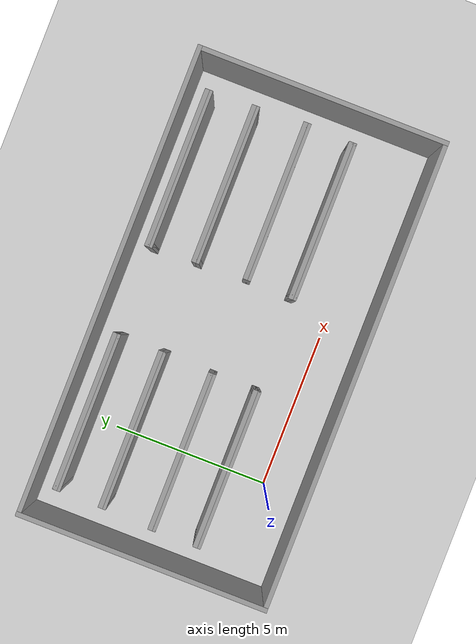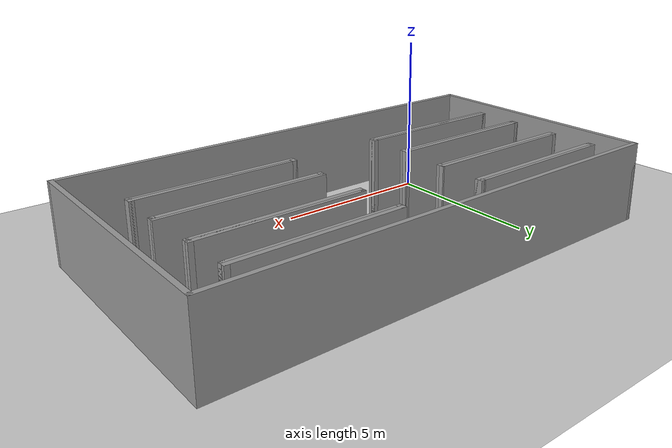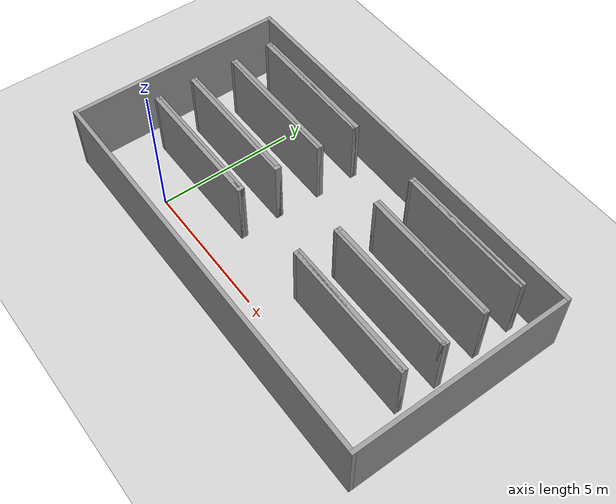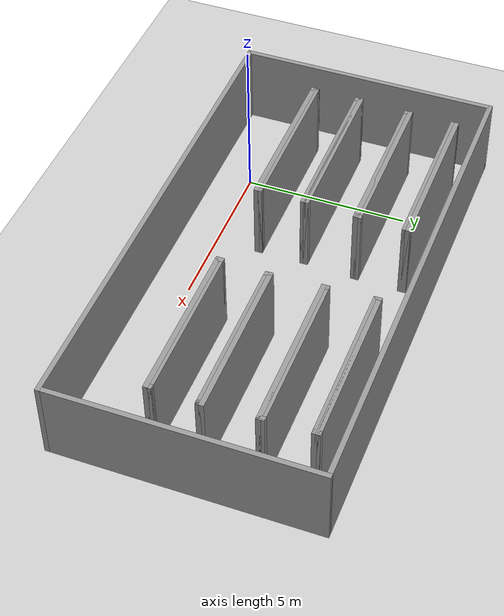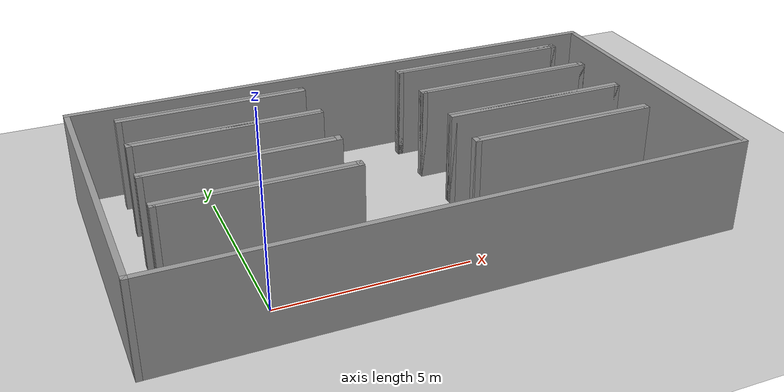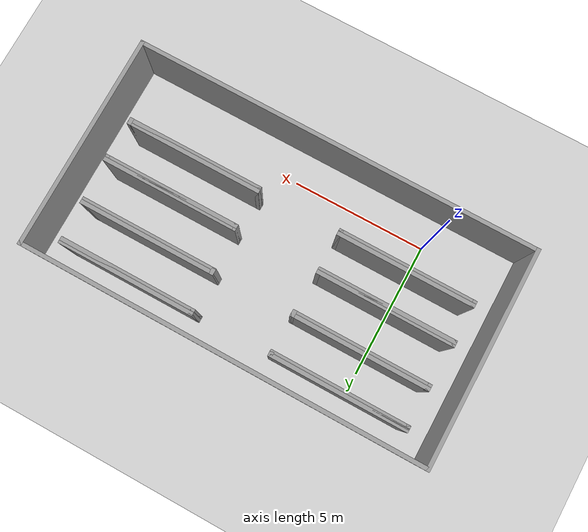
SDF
<sdf version="1.7">
 <world name="default">
  <light name="sun" type="directional">
   <pose>0 0 10 0 -0 0</pose>
   <diffuse>0.8 0.8 0.8 1</diffuse>
   <specular>0.2 0.2 0.2 1</specular>
   <attenuation>
    <range>1000</range>
    <constant>0.9</constant>
    <linear>0.01</linear>
    <quadratic>0.001</quadratic>
   </attenuation>
   <direction>-0.5 0.1 -0.9</direction>
   <spot><inner_angle>0</inner_angle><outer_angle>0</outer_angle><falloff>0</falloff></spot>
  </light>
  <model name="ground_plane">
   <static>1</static>
   <link name="link">
    <collision name="collision">
     <geometry><plane><normal>0 0 1</normal><size>100 100</size></plane></geometry>
     <surface>
      <contact><collide_bitmask>65535</collide_bitmask></contact>
      <friction><ode><mu>100</mu><mu2>50</mu2></ode></friction>
     </surface>
    </collision>
    <visual name="visual">
     <cast_shadows>0</cast_shadows>
     <geometry><plane><normal>0 0 1</normal><size>100 100</size></plane></geometry>
     <material>
      <script><uri>file://media/materials/scripts/gazebo.material</uri><name>Gazebo/Grey</name></script>
     </material>
    </visual>
   </link>
  </model>
  <gravity>0 0 -9.8</gravity>
  <magnetic_field>6e-06 2.3e-05 -4.2e-05</magnetic_field>
  <atmosphere type="adiabatic"/>
  <physics type="ode">
   <max_step_size>0.001</max_step_size>
   <real_time_factor>1</real_time_factor>
   <real_time_update_rate>1000</real_time_update_rate>
  </physics>
  <scene><ambient>0.4 0.4 0.4 1</ambient><background>0.7 0.7 0.7 1</background><shadows>1</shadows></scene>
  <spherical_coordinates>
   <surface_model>EARTH_WGS84</surface_model>
   <latitude_deg>0</latitude_deg>
   <longitude_deg>0</longitude_deg>
   <elevation>0</elevation>
   <heading_deg>0</heading_deg>
  </spherical_coordinates>
  <model name="Untitled">
   <pose>4.255 2.715 0 0 -0 0</pose>
   <link name="Wall_0">
    <collision name="Wall_0_Collision">
     <geometry><box><size>8 0.15 2.5</size></box></geometry>
     <pose>0 0 1.25 0 -0 0</pose>
    </collision>
    <visual name="Wall_0_Visual">
     <pose>0 0 1.25 0 -0 0</pose>
     <geometry><box><size>8 0.15 2.5</size></box></geometry>
     <material>
      <script><uri>file://media/materials/scripts/gazebo.material</uri><name>Gazebo/Grey</name></script>
      <ambient>1 1 1 1</ambient>
     </material>
     <meta><layer>0</layer></meta>
    </visual>
    <pose>-7.425 0 0 0 -0 1.5708</pose>
   </link>
   <link name="Wall_1">
    <collision name="Wall_1_Collision">
     <geometry><box><size>15 0.15 2.5</size></box></geometry>
     <pose>0 0 1.25 0 -0 0</pose>
    </collision>
    <visual name="Wall_1_Visual">
     <pose>0 0 1.25 0 -0 0</pose>
     <geometry><box><size>15 0.15 2.5</size></box></geometry>
     <material>
      <script><uri>file://media/materials/scripts/gazebo.material</uri><name>Gazebo/Grey</name></script>
      <ambient>1 1 1 1</ambient>
     </material>
     <meta><layer>0</layer></meta>
    </visual>
    <pose>-0 3.925 0 0 -0 0</pose>
   </link>
   <link name="Wall_10">
    <collision name="Wall_10_Collision">
     <geometry><box><size>5 0.15 2.5</size></box></geometry>
     <pose>0 0 1.25 0 -0 0</pose>
    </collision>
    <visual name="Wall_10_Visual">
     <pose>0 0 1.25 0 -0 0</pose>
     <geometry><box><size>5 0.15 2.5</size></box></geometry>
     <material>
      <script><uri>file://media/materials/scripts/gazebo.material</uri><name>Gazebo/Grey</name></script>
      <ambient>1 1 1 1</ambient>
     </material>
     <meta><layer>0</layer></meta>
    </visual>
    <pose>-3.87312 1.72882 0 0 -0 0</pose>
   </link>
   <link name="Wall_11">
    <collision name="Wall_11_Collision">
     <geometry><box><size>0.25 0.15 2.5</size></box></geometry>
     <pose>0 0 1.25 0 -0 0</pose>
    </collision>
    <visual name="Wall_11_Visual">
     <pose>0 0 1.25 0 -0 0</pose>
     <geometry><box><size>0.25 0.15 2.5</size></box></geometry>
     <material>
      <script><uri>file://media/materials/scripts/gazebo.material</uri><name>Gazebo/Grey</name></script>
      <ambient>1 1 1 1</ambient>
     </material>
     <meta><layer>0</layer></meta>
    </visual>
    <pose>-1.44813 1.67882 0 0 -0 -1.5708</pose>
   </link>
   <link name="Wall_12">
    <collision name="Wall_12_Collision">
     <geometry><box><size>5 0.15 2.5</size></box></geometry>
     <pose>0 0 1.25 0 -0 0</pose>
    </collision>
    <visual name="Wall_12_Visual">
     <pose>0 0 1.25 0 -0 0</pose>
     <geometry><box><size>5 0.15 2.5</size></box></geometry>
     <material>
      <script><uri>file://media/materials/scripts/gazebo.material</uri><name>Gazebo/Grey</name></script>
      <ambient>1 1 1 1</ambient>
     </material>
     <meta><layer>0</layer></meta>
    </visual>
    <pose>-3.87312 1.62882 0 0 -0 3.14159</pose>
   </link>
   <link name="Wall_13">
    <collision name="Wall_13_Collision">
     <geometry><box><size>0.25 0.15 2.5</size></box></geometry>
     <pose>0 0 1.25 0 -0 0</pose>
    </collision>
    <visual name="Wall_13_Visual">
     <pose>0 0 1.25 0 -0 0</pose>
     <geometry><box><size>0.25 0.15 2.5</size></box></geometry>
     <material>
      <script><uri>file://media/materials/scripts/gazebo.material</uri><name>Gazebo/Grey</name></script>
      <ambient>1 1 1 1</ambient>
     </material>
     <meta><layer>0</layer></meta>
    </visual>
    <pose>-6.29812 1.67882 0 0 -0 1.5708</pose>
   </link>
   <link name="Wall_15">
    <collision name="Wall_15_Collision">
     <geometry><box><size>5 0.15 2.5</size></box></geometry>
     <pose>0 0 1.25 0 -0 0</pose>
    </collision>
    <visual name="Wall_15_Visual">
     <pose>0 0 1.25 0 -0 0</pose>
     <geometry><box><size>5 0.15 2.5</size></box></geometry>
     <material>
      <script><uri>file://media/materials/scripts/gazebo.material</uri><name>Gazebo/Grey</name></script>
      <ambient>1 1 1 1</ambient>
     </material>
     <meta><layer>0</layer></meta>
    </visual>
    <pose>-3.94972 0.117688 0 0 -0 0</pose>
   </link>
   <link name="Wall_16">
    <collision name="Wall_16_Collision">
     <geometry><box><size>0.25 0.15 2.5</size></box></geometry>
     <pose>0 0 1.25 0 -0 0</pose>
    </collision>
    <visual name="Wall_16_Visual">
     <pose>0 0 1.25 0 -0 0</pose>
     <geometry><box><size>0.25 0.15 2.5</size></box></geometry>
     <material>
      <script><uri>file://media/materials/scripts/gazebo.material</uri><name>Gazebo/Grey</name></script>
      <ambient>1 1 1 1</ambient>
     </material>
     <meta><layer>0</layer></meta>
    </visual>
    <pose>-1.52472 0.067688 0 0 -0 -1.5708</pose>
   </link>
   <link name="Wall_17">
    <collision name="Wall_17_Collision">
     <geometry><box><size>5 0.15 2.5</size></box></geometry>
     <pose>0 0 1.25 0 -0 0</pose>
    </collision>
    <visual name="Wall_17_Visual">
     <pose>0 0 1.25 0 -0 0</pose>
     <geometry><box><size>5 0.15 2.5</size></box></geometry>
     <material>
      <script><uri>file://media/materials/scripts/gazebo.material</uri><name>Gazebo/Grey</name></script>
      <ambient>1 1 1 1</ambient>
     </material>
     <meta><layer>0</layer></meta>
    </visual>
    <pose>-3.94972 0.017688 0 0 -0 3.14159</pose>
   </link>
   <link name="Wall_18">
    <collision name="Wall_18_Collision">
     <geometry><box><size>0.25 0.15 2.5</size></box></geometry>
     <pose>0 0 1.25 0 -0 0</pose>
    </collision>
    <visual name="Wall_18_Visual">
     <pose>0 0 1.25 0 -0 0</pose>
     <geometry><box><size>0.25 0.15 2.5</size></box></geometry>
     <material>
      <script><uri>file://media/materials/scripts/gazebo.material</uri><name>Gazebo/Grey</name></script>
      <ambient>1 1 1 1</ambient>
     </material>
     <meta><layer>0</layer></meta>
    </visual>
    <pose>-6.37472 0.067688 0 0 -0 1.5708</pose>
   </link>
   <link name="Wall_2">
    <collision name="Wall_2_Collision">
     <geometry><box><size>8 0.15 2.5</size></box></geometry>
     <pose>0 0 1.25 0 -0 0</pose>
    </collision>
    <visual name="Wall_2_Visual">
     <pose>0 0 1.25 0 -0 0</pose>
     <geometry><box><size>8 0.15 2.5</size></box></geometry>
     <material>
      <script><uri>file://media/materials/scripts/gazebo.material</uri><name>Gazebo/Grey</name></script>
      <ambient>1 1 1 1</ambient>
     </material>
     <meta><layer>0</layer></meta>
    </visual>
    <pose>7.425 0 0 0 -0 -1.5708</pose>
   </link>
   <link name="Wall_20">
    <collision name="Wall_20_Collision">
     <geometry><box><size>5 0.15 2.5</size></box></geometry>
     <pose>0 0 1.25 0 -0 0</pose>
    </collision>
    <visual name="Wall_20_Visual">
     <pose>0 0 1.25 0 -0 0</pose>
     <geometry><box><size>5 0.15 2.5</size></box></geometry>
     <material>
      <script><uri>file://media/materials/scripts/gazebo.material</uri><name>Gazebo/Grey</name></script>
      <ambient>1 1 1 1</ambient>
     </material>
     <meta><layer>0</layer></meta>
    </visual>
    <pose>-3.94343 -1.31197 0 0 -0 0</pose>
   </link>
   <link name="Wall_21">
    <collision name="Wall_21_Collision">
     <geometry><box><size>0.25 0.15 2.5</size></box></geometry>
     <pose>0 0 1.25 0 -0 0</pose>
    </collision>
    <visual name="Wall_21_Visual">
     <pose>0 0 1.25 0 -0 0</pose>
     <geometry><box><size>0.25 0.15 2.5</size></box></geometry>
     <material>
      <script><uri>file://media/materials/scripts/gazebo.material</uri><name>Gazebo/Grey</name></script>
      <ambient>1 1 1 1</ambient>
     </material>
     <meta><layer>0</layer></meta>
    </visual>
    <pose>-1.51843 -1.36197 0 0 -0 -1.5708</pose>
   </link>
   <link name="Wall_22">
    <collision name="Wall_22_Collision">
     <geometry><box><size>5 0.15 2.5</size></box></geometry>
     <pose>0 0 1.25 0 -0 0</pose>
    </collision>
    <visual name="Wall_22_Visual">
     <pose>0 0 1.25 0 -0 0</pose>
     <geometry><box><size>5 0.15 2.5</size></box></geometry>
     <material>
      <script><uri>file://media/materials/scripts/gazebo.material</uri><name>Gazebo/Grey</name></script>
      <ambient>1 1 1 1</ambient>
     </material>
     <meta><layer>0</layer></meta>
    </visual>
    <pose>-3.94343 -1.41197 0 0 -0 3.14159</pose>
   </link>
   <link name="Wall_23">
    <collision name="Wall_23_Collision">
     <geometry><box><size>0.25 0.15 2.5</size></box></geometry>
     <pose>0 0 1.25 0 -0 0</pose>
    </collision>
    <visual name="Wall_23_Visual">
     <pose>0 0 1.25 0 -0 0</pose>
     <geometry><box><size>0.25 0.15 2.5</size></box></geometry>
     <material>
      <script><uri>file://media/materials/scripts/gazebo.material</uri><name>Gazebo/Grey</name></script>
      <ambient>1 1 1 1</ambient>
     </material>
     <meta><layer>0</layer></meta>
    </visual>
    <pose>-6.36843 -1.36197 0 0 -0 1.5708</pose>
   </link>
   <link name="Wall_25">
    <collision name="Wall_25_Collision">
     <geometry><box><size>5 0.15 2.5</size></box></geometry>
     <pose>0 0 1.25 0 -0 0</pose>
    </collision>
    <visual name="Wall_25_Visual">
     <pose>0 0 1.25 0 -0 0</pose>
     <geometry><box><size>5 0.15 2.5</size></box></geometry>
     <material>
      <script><uri>file://media/materials/scripts/gazebo.material</uri><name>Gazebo/Grey</name></script>
      <ambient>1 1 1 1</ambient>
     </material>
     <meta><layer>0</layer></meta>
    </visual>
    <pose>3.85801 3.25381 0 0 -0 3.14159</pose>
   </link>
   <link name="Wall_26">
    <collision name="Wall_26_Collision">
     <geometry><box><size>0.25 0.15 2.5</size></box></geometry>
     <pose>0 0 1.25 0 -0 0</pose>
    </collision>
    <visual name="Wall_26_Visual">
     <pose>0 0 1.25 0 -0 0</pose>
     <geometry><box><size>0.25 0.15 2.5</size></box></geometry>
     <material>
      <script><uri>file://media/materials/scripts/gazebo.material</uri><name>Gazebo/Grey</name></script>
      <ambient>1 1 1 1</ambient>
     </material>
     <meta><layer>0</layer></meta>
    </visual>
    <pose>1.43301 3.20381 0 0 -0 -1.5708</pose>
   </link>
   <link name="Wall_27">
    <collision name="Wall_27_Collision">
     <geometry><box><size>5 0.15 2.5</size></box></geometry>
     <pose>0 0 1.25 0 -0 0</pose>
    </collision>
    <visual name="Wall_27_Visual">
     <pose>0 0 1.25 0 -0 0</pose>
     <geometry><box><size>5 0.15 2.5</size></box></geometry>
     <material>
      <script><uri>file://media/materials/scripts/gazebo.material</uri><name>Gazebo/Grey</name></script>
      <ambient>1 1 1 1</ambient>
     </material>
     <meta><layer>0</layer></meta>
    </visual>
    <pose>3.85801 3.15381 0 0 -0 0</pose>
   </link>
   <link name="Wall_28">
    <collision name="Wall_28_Collision">
     <geometry><box><size>0.25 0.15 2.5</size></box></geometry>
     <pose>0 0 1.25 0 -0 0</pose>
    </collision>
    <visual name="Wall_28_Visual">
     <pose>0 0 1.25 0 -0 0</pose>
     <geometry><box><size>0.25 0.15 2.5</size></box></geometry>
     <material>
      <script><uri>file://media/materials/scripts/gazebo.material</uri><name>Gazebo/Grey</name></script>
      <ambient>1 1 1 1</ambient>
     </material>
     <meta><layer>0</layer></meta>
    </visual>
    <pose>6.28301 3.20381 0 0 -0 1.5708</pose>
   </link>
   <link name="Wall_3">
    <collision name="Wall_3_Collision">
     <geometry><box><size>15 0.15 2.5</size></box></geometry>
     <pose>0 0 1.25 0 -0 0</pose>
    </collision>
    <visual name="Wall_3_Visual">
     <pose>0 0 1.25 0 -0 0</pose>
     <geometry><box><size>15 0.15 2.5</size></box></geometry>
     <material>
      <script><uri>file://media/materials/scripts/gazebo.material</uri><name>Gazebo/Grey</name></script>
      <ambient>1 1 1 1</ambient>
     </material>
     <meta><layer>0</layer></meta>
    </visual>
    <pose>-0 -3.925 0 0 -0 3.14159</pose>
   </link>
   <link name="Wall_30">
    <collision name="Wall_30_Collision">
     <geometry><box><size>5 0.15 2.5</size></box></geometry>
     <pose>0 0 1.25 0 -0 0</pose>
    </collision>
    <visual name="Wall_30_Visual">
     <pose>0 0 1.25 0 -0 0</pose>
     <geometry><box><size>5 0.15 2.5</size></box></geometry>
     <material>
      <script><uri>file://media/materials/scripts/gazebo.material</uri><name>Gazebo/Grey</name></script>
      <ambient>1 1 1 1</ambient>
     </material>
     <meta><layer>0</layer></meta>
    </visual>
    <pose>3.91835 1.78552 0 0 -0 3.14159</pose>
   </link>
   <link name="Wall_31">
    <collision name="Wall_31_Collision">
     <geometry><box><size>0.25 0.15 2.5</size></box></geometry>
     <pose>0 0 1.25 0 -0 0</pose>
    </collision>
    <visual name="Wall_31_Visual">
     <pose>0 0 1.25 0 -0 0</pose>
     <geometry><box><size>0.25 0.15 2.5</size></box></geometry>
     <material>
      <script><uri>file://media/materials/scripts/gazebo.material</uri><name>Gazebo/Grey</name></script>
      <ambient>1 1 1 1</ambient>
     </material>
     <meta><layer>0</layer></meta>
    </visual>
    <pose>1.49335 1.73552 0 0 -0 -1.5708</pose>
   </link>
   <link name="Wall_32">
    <collision name="Wall_32_Collision">
     <geometry><box><size>5 0.15 2.5</size></box></geometry>
     <pose>0 0 1.25 0 -0 0</pose>
    </collision>
    <visual name="Wall_32_Visual">
     <pose>0 0 1.25 0 -0 0</pose>
     <geometry><box><size>5 0.15 2.5</size></box></geometry>
     <material>
      <script><uri>file://media/materials/scripts/gazebo.material</uri><name>Gazebo/Grey</name></script>
      <ambient>1 1 1 1</ambient>
     </material>
     <meta><layer>0</layer></meta>
    </visual>
    <pose>3.91835 1.68552 0 0 -0 0</pose>
   </link>
   <link name="Wall_33">
    <collision name="Wall_33_Collision">
     <geometry><box><size>0.25 0.15 2.5</size></box></geometry>
     <pose>0 0 1.25 0 -0 0</pose>
    </collision>
    <visual name="Wall_33_Visual">
     <pose>0 0 1.25 0 -0 0</pose>
     <geometry><box><size>0.25 0.15 2.5</size></box></geometry>
     <material>
      <script><uri>file://media/materials/scripts/gazebo.material</uri><name>Gazebo/Grey</name></script>
      <ambient>1 1 1 1</ambient>
     </material>
     <meta><layer>0</layer></meta>
    </visual>
    <pose>6.34335 1.73552 0 0 -0 1.5708</pose>
   </link>
   <link name="Wall_35">
    <collision name="Wall_35_Collision">
     <geometry><box><size>5 0.15 2.5</size></box></geometry>
     <pose>0 0 1.25 0 -0 0</pose>
    </collision>
    <visual name="Wall_35_Visual">
     <pose>0 0 1.25 0 -0 0</pose>
     <geometry><box><size>5 0.15 2.5</size></box></geometry>
     <material>
      <script><uri>file://media/materials/scripts/gazebo.material</uri><name>Gazebo/Grey</name></script>
      <ambient>1 1 1 1</ambient>
     </material>
     <meta><layer>0</layer></meta>
    </visual>
    <pose>3.9988 0.176433 0 0 -0 3.14159</pose>
   </link>
   <link name="Wall_36">
    <collision name="Wall_36_Collision">
     <geometry><box><size>0.25 0.15 2.5</size></box></geometry>
     <pose>0 0 1.25 0 -0 0</pose>
    </collision>
    <visual name="Wall_36_Visual">
     <pose>0 0 1.25 0 -0 0</pose>
     <geometry><box><size>0.25 0.15 2.5</size></box></geometry>
     <material>
      <script><uri>file://media/materials/scripts/gazebo.material</uri><name>Gazebo/Grey</name></script>
      <ambient>1 1 1 1</ambient>
     </material>
     <meta><layer>0</layer></meta>
    </visual>
    <pose>1.5738 0.126433 0 0 -0 -1.5708</pose>
   </link>
   <link name="Wall_37">
    <collision name="Wall_37_Collision">
     <geometry><box><size>5 0.15 2.5</size></box></geometry>
     <pose>0 0 1.25 0 -0 0</pose>
    </collision>
    <visual name="Wall_37_Visual">
     <pose>0 0 1.25 0 -0 0</pose>
     <geometry><box><size>5 0.15 2.5</size></box></geometry>
     <material>
      <script><uri>file://media/materials/scripts/gazebo.material</uri><name>Gazebo/Grey</name></script>
      <ambient>1 1 1 1</ambient>
     </material>
     <meta><layer>0</layer></meta>
    </visual>
    <pose>3.9988 0.076433 0 0 -0 0</pose>
   </link>
   <link name="Wall_38">
    <collision name="Wall_38_Collision">
     <geometry><box><size>0.15 0.15 2.5</size></box></geometry>
     <pose>0 0 1.25 0 -0 0</pose>
    </collision>
    <visual name="Wall_38_Visual">
     <pose>0 0 1.25 0 -0 0</pose>
     <geometry><box><size>0.15 0.15 2.5</size></box></geometry>
     <material>
      <script><uri>file://media/materials/scripts/gazebo.material</uri><name>Gazebo/Grey</name></script>
      <ambient>1 1 1 1</ambient>
     </material>
     <meta><layer>0</layer></meta>
    </visual>
    <pose>6.4238 0.076433 0 0 -0 0</pose>
   </link>
   <link name="Wall_40">
    <collision name="Wall_40_Collision">
     <geometry><box><size>5 0.15 2.5</size></box></geometry>
     <pose>0 0 1.25 0 -0 0</pose>
    </collision>
    <visual name="Wall_40_Visual">
     <pose>0 0 1.25 0 -0 0</pose>
     <geometry><box><size>5 0.15 2.5</size></box></geometry>
     <material>
      <script><uri>file://media/materials/scripts/gazebo.material</uri><name>Gazebo/Grey</name></script>
      <ambient>1 1 1 1</ambient>
     </material>
     <meta><layer>0</layer></meta>
    </visual>
    <pose>3.94109 -1.29186 0 0 -0 0</pose>
   </link>
   <link name="Wall_41">
    <collision name="Wall_41_Collision">
     <geometry><box><size>0.25 0.15 2.5</size></box></geometry>
     <pose>0 0 1.25 0 -0 0</pose>
    </collision>
    <visual name="Wall_41_Visual">
     <pose>0 0 1.25 0 -0 0</pose>
     <geometry><box><size>0.25 0.15 2.5</size></box></geometry>
     <material>
      <script><uri>file://media/materials/scripts/gazebo.material</uri><name>Gazebo/Grey</name></script>
      <ambient>1 1 1 1</ambient>
     </material>
     <meta><layer>0</layer></meta>
    </visual>
    <pose>6.36609 -1.34186 0 0 -0 -1.5708</pose>
   </link>
   <link name="Wall_42">
    <collision name="Wall_42_Collision">
     <geometry><box><size>5 0.15 2.5</size></box></geometry>
     <pose>0 0 1.25 0 -0 0</pose>
    </collision>
    <visual name="Wall_42_Visual">
     <pose>0 0 1.25 0 -0 0</pose>
     <geometry><box><size>5 0.15 2.5</size></box></geometry>
     <material>
      <script><uri>file://media/materials/scripts/gazebo.material</uri><name>Gazebo/Grey</name></script>
      <ambient>1 1 1 1</ambient>
     </material>
     <meta><layer>0</layer></meta>
    </visual>
    <pose>3.94109 -1.39186 0 0 -0 3.14159</pose>
   </link>
   <link name="Wall_43">
    <collision name="Wall_43_Collision">
     <geometry><box><size>0.25 0.15 2.5</size></box></geometry>
     <pose>0 0 1.25 0 -0 0</pose>
    </collision>
    <visual name="Wall_43_Visual">
     <pose>0 0 1.25 0 -0 0</pose>
     <geometry><box><size>0.25 0.15 2.5</size></box></geometry>
     <material>
      <script><uri>file://media/materials/scripts/gazebo.material</uri><name>Gazebo/Grey</name></script>
      <ambient>1 1 1 1</ambient>
     </material>
     <meta><layer>0</layer></meta>
    </visual>
    <pose>1.51609 -1.34186 0 0 -0 1.5708</pose>
   </link>
   <link name="Wall_5">
    <collision name="Wall_5_Collision">
     <geometry><box><size>5 0.15 2.5</size></box></geometry>
     <pose>0 0 1.25 0 -0 0</pose>
    </collision>
    <visual name="Wall_5_Visual">
     <pose>0 0 1.25 0 -0 0</pose>
     <geometry><box><size>5 0.15 2.5</size></box></geometry>
     <material>
      <script><uri>file://media/materials/scripts/gazebo.material</uri><name>Gazebo/Grey</name></script>
      <ambient>1 1 1 1</ambient>
     </material>
     <meta><layer>0</layer></meta>
    </visual>
    <pose>-3.86072 3.18487 0 0 -0 0</pose>
   </link>
   <link name="Wall_6">
    <collision name="Wall_6_Collision">
     <geometry><box><size>0.25 0.15 2.5</size></box></geometry>
     <pose>0 0 1.25 0 -0 0</pose>
    </collision>
    <visual name="Wall_6_Visual">
     <pose>0 0 1.25 0 -0 0</pose>
     <geometry><box><size>0.25 0.15 2.5</size></box></geometry>
     <material>
      <script><uri>file://media/materials/scripts/gazebo.material</uri><name>Gazebo/Grey</name></script>
      <ambient>1 1 1 1</ambient>
     </material>
     <meta><layer>0</layer></meta>
    </visual>
    <pose>-1.43572 3.13487 0 0 -0 -1.5708</pose>
   </link>
   <link name="Wall_7">
    <collision name="Wall_7_Collision">
     <geometry><box><size>5 0.15 2.5</size></box></geometry>
     <pose>0 0 1.25 0 -0 0</pose>
    </collision>
    <visual name="Wall_7_Visual">
     <pose>0 0 1.25 0 -0 0</pose>
     <geometry><box><size>5 0.15 2.5</size></box></geometry>
     <material>
      <script><uri>file://media/materials/scripts/gazebo.material</uri><name>Gazebo/Grey</name></script>
      <ambient>1 1 1 1</ambient>
     </material>
     <meta><layer>0</layer></meta>
    </visual>
    <pose>-3.86072 3.08487 0 0 -0 3.14159</pose>
   </link>
   <link name="Wall_8">
    <collision name="Wall_8_Collision">
     <geometry><box><size>0.25 0.15 2.5</size></box></geometry>
     <pose>0 0 1.25 0 -0 0</pose>
    </collision>
    <visual name="Wall_8_Visual">
     <pose>0 0 1.25 0 -0 0</pose>
     <geometry><box><size>0.25 0.15 2.5</size></box></geometry>
     <material>
      <script><uri>file://media/materials/scripts/gazebo.material</uri><name>Gazebo/Grey</name></script>
      <ambient>1 1 1 1</ambient>
     </material>
     <meta><layer>0</layer></meta>
    </visual>
    <pose>-6.28573 3.13487 0 0 -0 1.5708</pose>
   </link>
   <static>1</static>
  </model>
 </world>
</sdf>
